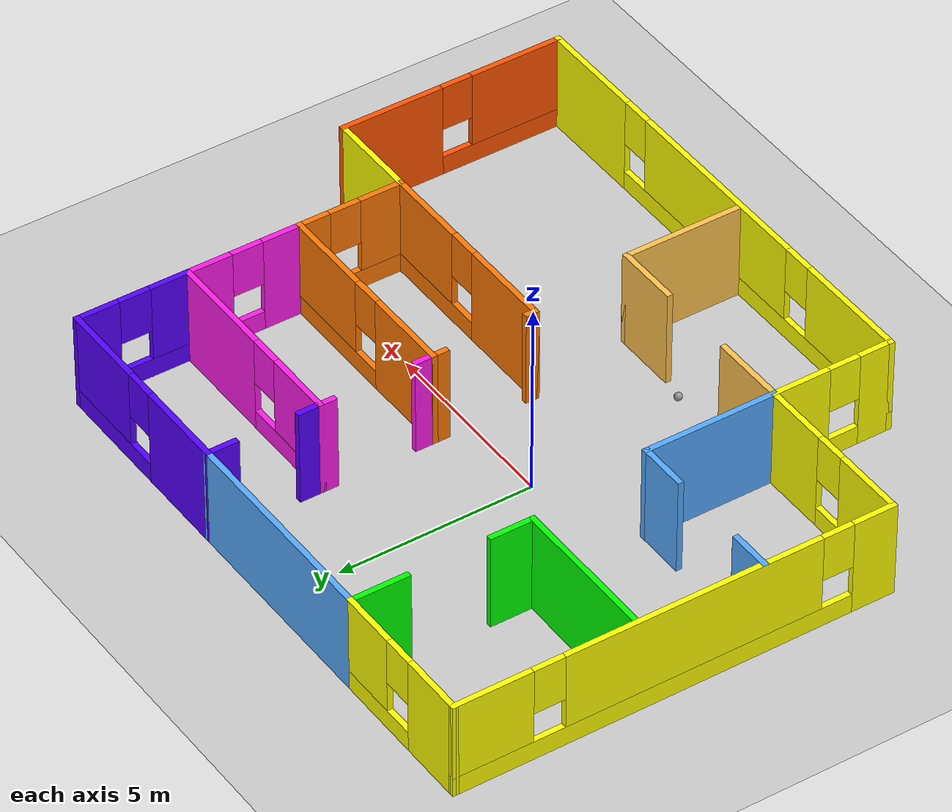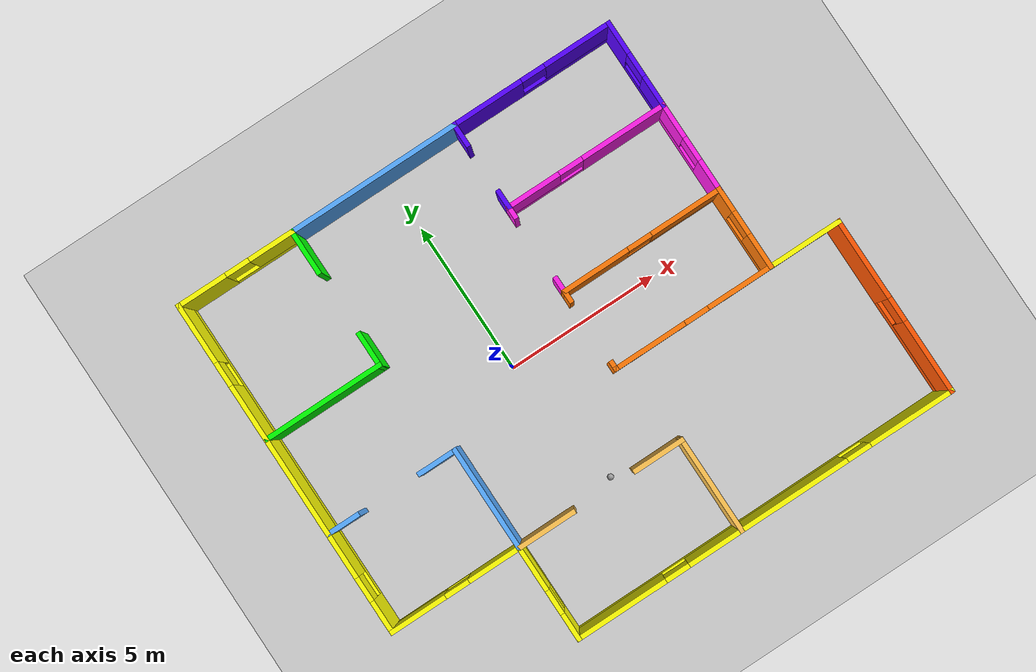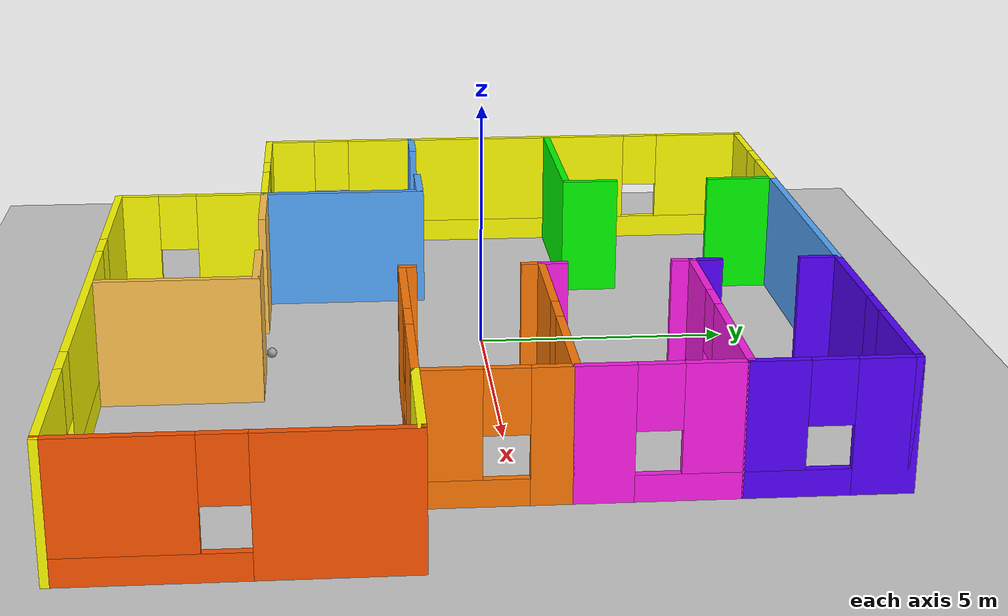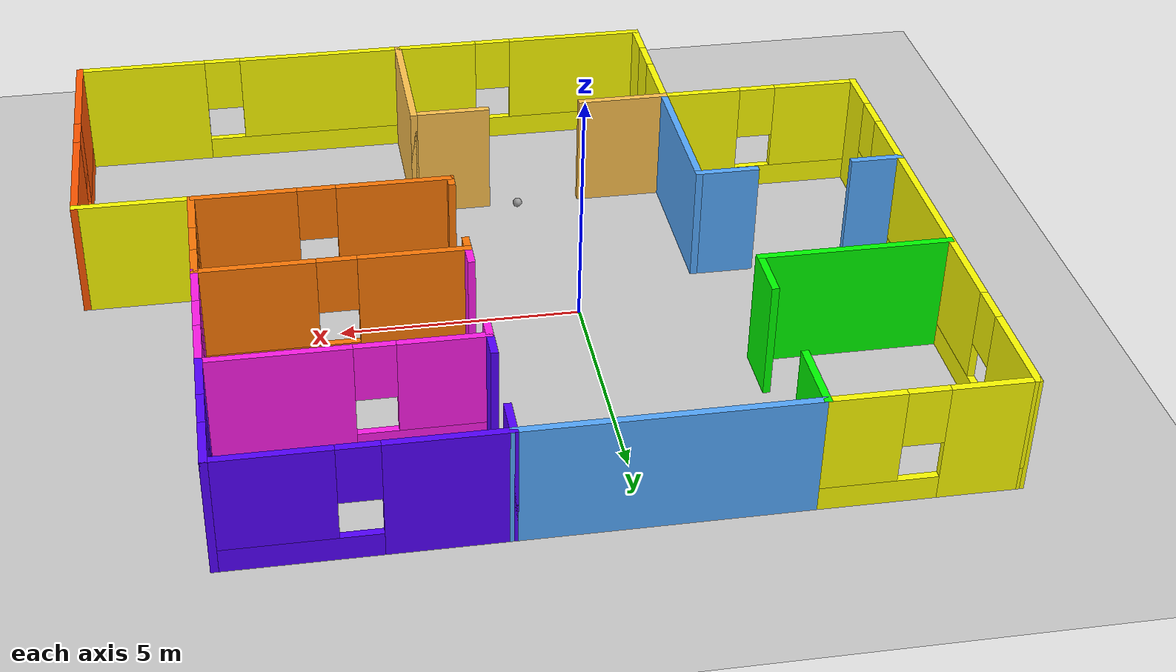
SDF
<sdf version="1.6">
 <world name="default">
  <plugin name="hello" filename="libhello.so"/>
  <light name="sun" type="directional">
   <pose>0 0 10 0 -0 0</pose>
   <diffuse>0.8 0.8 0.8 1</diffuse>
   <specular>0.1 0.1 0.1 1</specular>
   <attenuation>
    <range>1000</range>
    <constant>0.9</constant>
    <linear>0.01</linear>
    <quadratic>0.001</quadratic>
   </attenuation>
   <direction>-0.5 0.5 -1</direction>
  </light>
  <model name="ground_plane">
   <static>1</static>
   <link name="link">
    <collision name="collision">
     <geometry><plane><normal>0 0 1</normal><size>100 100</size></plane></geometry>
     <surface><friction><ode><mu>100</mu><mu2>50</mu2></ode></friction></surface>
    </collision>
    <visual name="visual">
     <cast_shadows>0</cast_shadows>
     <geometry><plane><normal>0 0 1</normal><size>100 100</size></plane></geometry>
     <material>
      <script><uri>file://media/materials/scripts/gazebo.material</uri><name>Gazebo/Grey</name></script>
     </material>
    </visual>
   </link>
  </model>
  <gravity>0 0 -9.8</gravity>
  <magnetic_field>6e-06 2.3e-05 -4.2e-05</magnetic_field>
  <atmosphere type="adiabatic"/>
  <physics name="default_physics" default="0" type="ode">
   <max_step_size>0.001</max_step_size>
   <real_time_factor>1</real_time_factor>
   <real_time_update_rate>1000</real_time_update_rate>
  </physics>
  <scene><ambient>0.4 0.4 0.4 1</ambient><background>0.7 0.7 0.7 1</background><shadows>1</shadows></scene>
  <spherical_coordinates>
   <surface_model>EARTH_WGS84</surface_model>
   <latitude_deg>0</latitude_deg>
   <longitude_deg>0</longitude_deg>
   <elevation>0</elevation>
   <heading_deg>0</heading_deg>
  </spherical_coordinates>
  <model name="mybuilding">
   <pose>1.56301 -0.42583 0 0 -0 0</pose>
   <link name="Wall_10">
    <pose>2.17523 -7.15011 0 0 -0 3.14159</pose>
    <visual name="Wall_10_Visual_0">
     <pose>-5.06038 0 1.25 0 -0 0</pose>
     <geometry><box><size>2.87924 0.15 2.5</size></box></geometry>
     <material>
      <script><uri>file://media/materials/scripts/gazebo.material</uri><name>Gazebo/Grey</name></script>
      <ambient>1 1 0 1</ambient>
     </material>
    </visual>
    <collision name="Wall_10_Collision_0">
     <geometry><box><size>2.87924 0.15 2.5</size></box></geometry>
     <pose>-5.06038 0 1.25 0 -0 0</pose>
    </collision>
    <visual name="Wall_10_Visual_1">
     <pose>1.43962 0 0.25 0 -0 0</pose>
     <geometry><box><size>10.1208 0.15 0.5</size></box></geometry>
     <material>
      <script><uri>file://media/materials/scripts/gazebo.material</uri><name>Gazebo/Grey</name></script>
      <ambient>1 1 0 1</ambient>
     </material>
    </visual>
    <collision name="Wall_10_Collision_1">
     <geometry><box><size>10.1208 0.15 0.5</size></box></geometry>
     <pose>1.43962 0 0.25 0 -0 0</pose>
    </collision>
    <visual name="Wall_10_Visual_2">
     <pose>-0.096927 0 1.5 0 -0 0</pose>
     <geometry><box><size>5.44766 0.15 2</size></box></geometry>
     <material>
      <script><uri>file://media/materials/scripts/gazebo.material</uri><name>Gazebo/Grey</name></script>
      <ambient>1 1 0 1</ambient>
     </material>
    </visual>
    <collision name="Wall_10_Collision_2">
     <geometry><box><size>5.44766 0.15 2</size></box></geometry>
     <pose>-0.096927 0 1.5 0 -0 0</pose>
    </collision>
    <visual name="Wall_10_Visual_3">
     <pose>4.96345 0 1.5 0 -0 0</pose>
     <geometry><box><size>3.07309 0.15 2</size></box></geometry>
     <material>
      <script><uri>file://media/materials/scripts/gazebo.material</uri><name>Gazebo/Grey</name></script>
      <ambient>1 1 0 1</ambient>
     </material>
    </visual>
    <collision name="Wall_10_Collision_3">
     <geometry><box><size>3.07309 0.15 2</size></box></geometry>
     <pose>4.96345 0 1.5 0 -0 0</pose>
    </collision>
    <visual name="Wall_10_Visual_4">
     <pose>-3.22076 0 1.9 0 -0 0</pose>
     <geometry><box><size>0.8 0.15 1.2</size></box></geometry>
     <material>
      <script><uri>file://media/materials/scripts/gazebo.material</uri><name>Gazebo/Grey</name></script>
      <ambient>1 1 0 1</ambient>
     </material>
    </visual>
    <collision name="Wall_10_Collision_4">
     <geometry><box><size>0.8 0.15 1.2</size></box></geometry>
     <pose>-3.22076 0 1.9 0 -0 0</pose>
    </collision>
    <visual name="Wall_10_Visual_5">
     <pose>3.02691 0 1.9 0 -0 0</pose>
     <geometry><box><size>0.8 0.15 1.2</size></box></geometry>
     <material>
      <script><uri>file://media/materials/scripts/gazebo.material</uri><name>Gazebo/Grey</name></script>
      <ambient>1 1 0 1</ambient>
     </material>
    </visual>
    <collision name="Wall_10_Collision_5">
     <geometry><box><size>0.8 0.15 1.2</size></box></geometry>
     <pose>3.02691 0 1.9 0 -0 0</pose>
    </collision>
   </link>
   <link name="Wall_11">
    <pose>-4.24977 -5.60011 0 0 -0 1.5708</pose>
    <visual name="Wall_11_Visual_0">
     <pose>-1.16435 0 1.25 0 -0 0</pose>
     <geometry><box><size>0.921292 0.15 2.5</size></box></geometry>
     <material>
      <script><uri>file://media/materials/scripts/gazebo.material</uri><name>Gazebo/Grey</name></script>
      <ambient>1 1 0 1</ambient>
     </material>
    </visual>
    <collision name="Wall_11_Collision_0">
     <geometry><box><size>0.921292 0.15 2.5</size></box></geometry>
     <pose>-1.16435 0 1.25 0 -0 0</pose>
    </collision>
    <visual name="Wall_11_Visual_1">
     <pose>0.460646 0 0.25 0 -0 0</pose>
     <geometry><box><size>2.32871 0.15 0.5</size></box></geometry>
     <material>
      <script><uri>file://media/materials/scripts/gazebo.material</uri><name>Gazebo/Grey</name></script>
      <ambient>1 1 0 1</ambient>
     </material>
    </visual>
    <collision name="Wall_11_Collision_1">
     <geometry><box><size>2.32871 0.15 0.5</size></box></geometry>
     <pose>0.460646 0 0.25 0 -0 0</pose>
    </collision>
    <visual name="Wall_11_Visual_2">
     <pose>0.860646 0 1.5 0 -0 0</pose>
     <geometry><box><size>1.52871 0.15 2</size></box></geometry>
     <material>
      <script><uri>file://media/materials/scripts/gazebo.material</uri><name>Gazebo/Grey</name></script>
      <ambient>1 1 0 1</ambient>
     </material>
    </visual>
    <collision name="Wall_11_Collision_2">
     <geometry><box><size>1.52871 0.15 2</size></box></geometry>
     <pose>0.860646 0 1.5 0 -0 0</pose>
    </collision>
    <visual name="Wall_11_Visual_3">
     <pose>-0.303708 0 1.9 0 -0 0</pose>
     <geometry><box><size>0.8 0.15 1.2</size></box></geometry>
     <material>
      <script><uri>file://media/materials/scripts/gazebo.material</uri><name>Gazebo/Grey</name></script>
      <ambient>1 1 0 1</ambient>
     </material>
    </visual>
    <collision name="Wall_11_Collision_3">
     <geometry><box><size>0.8 0.15 1.2</size></box></geometry>
     <pose>-0.303708 0 1.9 0 -0 0</pose>
    </collision>
   </link>
   <link name="Wall_12">
    <pose>-6.42494 -4.05006 0 0 -0 3.14157</pose>
    <visual name="Wall_12_Visual_0">
     <pose>-1.3501 0 1.25 0 -0 0</pose>
     <geometry><box><size>1.7998 0.15 2.5</size></box></geometry>
     <material>
      <script><uri>file://media/materials/scripts/gazebo.material</uri><name>Gazebo/Grey</name></script>
      <ambient>1 1 0 1</ambient>
     </material>
    </visual>
    <collision name="Wall_12_Collision_0">
     <geometry><box><size>1.7998 0.15 2.5</size></box></geometry>
     <pose>-1.3501 0 1.25 0 -0 0</pose>
    </collision>
    <visual name="Wall_12_Visual_1">
     <pose>0.8999 0 0.25 0 -0 0</pose>
     <geometry><box><size>2.7002 0.15 0.5</size></box></geometry>
     <material>
      <script><uri>file://media/materials/scripts/gazebo.material</uri><name>Gazebo/Grey</name></script>
      <ambient>1 1 0 1</ambient>
     </material>
    </visual>
    <collision name="Wall_12_Collision_1">
     <geometry><box><size>2.7002 0.15 0.5</size></box></geometry>
     <pose>0.8999 0 0.25 0 -0 0</pose>
    </collision>
    <visual name="Wall_12_Visual_2">
     <pose>1.2999 0 1.5 0 -0 0</pose>
     <geometry><box><size>1.9002 0.15 2</size></box></geometry>
     <material>
      <script><uri>file://media/materials/scripts/gazebo.material</uri><name>Gazebo/Grey</name></script>
      <ambient>1 1 0 1</ambient>
     </material>
    </visual>
    <collision name="Wall_12_Collision_2">
     <geometry><box><size>1.9002 0.15 2</size></box></geometry>
     <pose>1.2999 0 1.5 0 -0 0</pose>
    </collision>
    <visual name="Wall_12_Visual_3">
     <pose>-0.0502 0 1.9 0 -0 0</pose>
     <geometry><box><size>0.8 0.15 1.2</size></box></geometry>
     <material>
      <script><uri>file://media/materials/scripts/gazebo.material</uri><name>Gazebo/Grey</name></script>
      <ambient>1 1 0 1</ambient>
     </material>
    </visual>
    <collision name="Wall_12_Collision_3">
     <geometry><box><size>0.8 0.15 1.2</size></box></geometry>
     <pose>-0.0502 0 1.9 0 -0 0</pose>
    </collision>
   </link>
   <link name="Wall_15">
    <pose>-8.60011 1.55 0 0 -0 1.5708</pose>
    <visual name="Wall_15_Visual_0">
     <pose>-5.11027 0 1.25 0 -0 0</pose>
     <geometry><box><size>1.12946 0.15 2.5</size></box></geometry>
     <material>
      <script><uri>file://media/materials/scripts/gazebo.material</uri><name>Gazebo/Grey</name></script>
      <ambient>1 1 0 1</ambient>
     </material>
    </visual>
    <collision name="Wall_15_Collision_0">
     <geometry><box><size>1.12946 0.15 2.5</size></box></geometry>
     <pose>-5.11027 0 1.25 0 -0 0</pose>
    </collision>
    <visual name="Wall_15_Visual_1">
     <pose>0.564732 0 0.25 0 -0 0</pose>
     <geometry><box><size>10.2205 0.15 0.5</size></box></geometry>
     <material>
      <script><uri>file://media/materials/scripts/gazebo.material</uri><name>Gazebo/Grey</name></script>
      <ambient>1 1 0 1</ambient>
     </material>
    </visual>
    <collision name="Wall_15_Collision_1">
     <geometry><box><size>10.2205 0.15 0.5</size></box></geometry>
     <pose>0.564732 0 0.25 0 -0 0</pose>
    </collision>
    <visual name="Wall_15_Visual_2">
     <pose>-0.451765 0 1.5 0 -0 0</pose>
     <geometry><box><size>6.58754 0.15 2</size></box></geometry>
     <material>
      <script><uri>file://media/materials/scripts/gazebo.material</uri><name>Gazebo/Grey</name></script>
      <ambient>1 1 0 1</ambient>
     </material>
    </visual>
    <collision name="Wall_15_Collision_2">
     <geometry><box><size>6.58754 0.15 2</size></box></geometry>
     <pose>-0.451765 0 1.5 0 -0 0</pose>
    </collision>
    <visual name="Wall_15_Visual_3">
     <pose>4.6585 0 1.5 0 -0 0</pose>
     <geometry><box><size>2.033 0.15 2</size></box></geometry>
     <material>
      <script><uri>file://media/materials/scripts/gazebo.material</uri><name>Gazebo/Grey</name></script>
      <ambient>1 1 0 1</ambient>
     </material>
    </visual>
    <collision name="Wall_15_Collision_3">
     <geometry><box><size>2.033 0.15 2</size></box></geometry>
     <pose>4.6585 0 1.5 0 -0 0</pose>
    </collision>
    <visual name="Wall_15_Visual_4">
     <pose>-4.14553 0 1.9 0 -0 0</pose>
     <geometry><box><size>0.8 0.15 1.2</size></box></geometry>
     <material>
      <script><uri>file://media/materials/scripts/gazebo.material</uri><name>Gazebo/Grey</name></script>
      <ambient>1 1 0 1</ambient>
     </material>
    </visual>
    <collision name="Wall_15_Collision_4">
     <geometry><box><size>0.8 0.15 1.2</size></box></geometry>
     <pose>-4.14553 0 1.9 0 -0 0</pose>
    </collision>
    <visual name="Wall_15_Visual_5">
     <pose>3.242 0 1.9 0 -0 0</pose>
     <geometry><box><size>0.8 0.15 1.2</size></box></geometry>
     <material>
      <script><uri>file://media/materials/scripts/gazebo.material</uri><name>Gazebo/Grey</name></script>
      <ambient>1 1 0 1</ambient>
     </material>
    </visual>
    <collision name="Wall_15_Collision_5">
     <geometry><box><size>0.8 0.15 1.2</size></box></geometry>
     <pose>3.242 0 1.9 0 -0 0</pose>
    </collision>
   </link>
   <link name="Wall_19">
    <pose>3.57489 4.3 0 0 -0 3.14159</pose>
    <visual name="Wall_19_Visual_0">
     <pose>-1.30873 0 1.25 0 -0 0</pose>
     <geometry><box><size>2.88253 0.15 2.5</size></box></geometry>
     <material>
      <script><uri>file://media/materials/scripts/gazebo.material</uri><name>Gazebo/Grey</name></script>
      <ambient>1 0.109804 0.913725 1</ambient>
     </material>
    </visual>
    <collision name="Wall_19_Collision_0">
     <geometry><box><size>2.88253 0.15 2.5</size></box></geometry>
     <pose>-1.30873 0 1.25 0 -0 0</pose>
    </collision>
    <visual name="Wall_19_Visual_1">
     <pose>1.44127 0 0.25 0 -0 0</pose>
     <geometry><box><size>2.61747 0.15 0.5</size></box></geometry>
     <material>
      <script><uri>file://media/materials/scripts/gazebo.material</uri><name>Gazebo/Grey</name></script>
      <ambient>1 0.109804 0.913725 1</ambient>
     </material>
    </visual>
    <collision name="Wall_19_Collision_1">
     <geometry><box><size>2.61747 0.15 0.5</size></box></geometry>
     <pose>1.44127 0 0.25 0 -0 0</pose>
    </collision>
    <visual name="Wall_19_Visual_2">
     <pose>1.84126 0 1.5 0 -0 0</pose>
     <geometry><box><size>1.81747 0.15 2</size></box></geometry>
     <material>
      <script><uri>file://media/materials/scripts/gazebo.material</uri><name>Gazebo/Grey</name></script>
      <ambient>1 0.109804 0.913725 1</ambient>
     </material>
    </visual>
    <collision name="Wall_19_Collision_2">
     <geometry><box><size>1.81747 0.15 2</size></box></geometry>
     <pose>1.84126 0 1.5 0 -0 0</pose>
    </collision>
    <visual name="Wall_19_Visual_3">
     <pose>0.53253 0 1.9 0 -0 0</pose>
     <geometry><box><size>0.8 0.15 1.2</size></box></geometry>
     <material>
      <script><uri>file://media/materials/scripts/gazebo.material</uri><name>Gazebo/Grey</name></script>
      <ambient>1 0.109804 0.913725 1</ambient>
     </material>
    </visual>
    <collision name="Wall_19_Collision_3">
     <geometry><box><size>0.8 0.15 1.2</size></box></geometry>
     <pose>0.53253 0 1.9 0 -0 0</pose>
    </collision>
   </link>
   <link name="Wall_21">
    <pose>3.57523 -1.30011 0 0 -0 0</pose>
    <visual name="Wall_21_Visual_0">
     <pose>-1.51945 0 1.25 0 -0 0</pose>
     <geometry><box><size>2.4611 0.15 2.5</size></box></geometry>
     <material>
      <script><uri>file://media/materials/scripts/gazebo.material</uri><name>Gazebo/Grey</name></script>
      <ambient>0.996078 0.47451 0.0196078 1</ambient>
     </material>
    </visual>
    <collision name="Wall_21_Collision_0">
     <geometry><box><size>2.4611 0.15 2.5</size></box></geometry>
     <pose>-1.51945 0 1.25 0 -0 0</pose>
    </collision>
    <visual name="Wall_21_Visual_1">
     <pose>1.23055 0 0.25 0 -0 0</pose>
     <geometry><box><size>3.0389 0.15 0.5</size></box></geometry>
     <material>
      <script><uri>file://media/materials/scripts/gazebo.material</uri><name>Gazebo/Grey</name></script>
      <ambient>0.996078 0.47451 0.0196078 1</ambient>
     </material>
    </visual>
    <collision name="Wall_21_Collision_1">
     <geometry><box><size>3.0389 0.15 0.5</size></box></geometry>
     <pose>1.23055 0 0.25 0 -0 0</pose>
    </collision>
    <visual name="Wall_21_Visual_2">
     <pose>1.63055 0 1.5 0 -0 0</pose>
     <geometry><box><size>2.23889 0.15 2</size></box></geometry>
     <material>
      <script><uri>file://media/materials/scripts/gazebo.material</uri><name>Gazebo/Grey</name></script>
      <ambient>0.996078 0.47451 0.0196078 1</ambient>
     </material>
    </visual>
    <collision name="Wall_21_Collision_2">
     <geometry><box><size>2.23889 0.15 2</size></box></geometry>
     <pose>1.63055 0 1.5 0 -0 0</pose>
    </collision>
    <visual name="Wall_21_Visual_3">
     <pose>0.111105 0 1.9 0 -0 0</pose>
     <geometry><box><size>0.8 0.15 1.2</size></box></geometry>
     <material>
      <script><uri>file://media/materials/scripts/gazebo.material</uri><name>Gazebo/Grey</name></script>
      <ambient>0.996078 0.47451 0.0196078 1</ambient>
     </material>
    </visual>
    <collision name="Wall_21_Collision_3">
     <geometry><box><size>0.8 0.15 1.2</size></box></geometry>
     <pose>0.111105 0 1.9 0 -0 0</pose>
    </collision>
   </link>
   <link name="Wall_23">
    <pose>3.57489 1.37699 0 0 -0 0</pose>
    <visual name="Wall_23_Visual_0">
     <pose>-1.61518 0 1.25 0 -0 0</pose>
     <geometry><box><size>2.26965 0.15 2.5</size></box></geometry>
     <material>
      <script><uri>file://media/materials/scripts/gazebo.material</uri><name>Gazebo/Grey</name></script>
      <ambient>0.996078 0.47451 0.0196078 1</ambient>
     </material>
    </visual>
    <collision name="Wall_23_Collision_0">
     <geometry><box><size>2.26965 0.15 2.5</size></box></geometry>
     <pose>-1.61518 0 1.25 0 -0 0</pose>
    </collision>
    <visual name="Wall_23_Visual_1">
     <pose>1.13482 0 0.25 0 -0 0</pose>
     <geometry><box><size>3.23035 0.15 0.5</size></box></geometry>
     <material>
      <script><uri>file://media/materials/scripts/gazebo.material</uri><name>Gazebo/Grey</name></script>
      <ambient>0.996078 0.47451 0.0196078 1</ambient>
     </material>
    </visual>
    <collision name="Wall_23_Collision_1">
     <geometry><box><size>3.23035 0.15 0.5</size></box></geometry>
     <pose>1.13482 0 0.25 0 -0 0</pose>
    </collision>
    <visual name="Wall_23_Visual_2">
     <pose>1.53483 0 1.5 0 -0 0</pose>
     <geometry><box><size>2.43035 0.15 2</size></box></geometry>
     <material>
      <script><uri>file://media/materials/scripts/gazebo.material</uri><name>Gazebo/Grey</name></script>
      <ambient>0.996078 0.47451 0.0196078 1</ambient>
     </material>
    </visual>
    <collision name="Wall_23_Collision_2">
     <geometry><box><size>2.43035 0.15 2</size></box></geometry>
     <pose>1.53483 0 1.5 0 -0 0</pose>
    </collision>
    <visual name="Wall_23_Visual_3">
     <pose>-0.080349 0 1.9 0 -0 0</pose>
     <geometry><box><size>0.8 0.15 1.2</size></box></geometry>
     <material>
      <script><uri>file://media/materials/scripts/gazebo.material</uri><name>Gazebo/Grey</name></script>
      <ambient>0.996078 0.47451 0.0196078 1</ambient>
     </material>
    </visual>
    <collision name="Wall_23_Collision_3">
     <geometry><box><size>0.8 0.15 1.2</size></box></geometry>
     <pose>-0.080349 0 1.9 0 -0 0</pose>
    </collision>
   </link>
   <link name="Wall_25">
    <collision name="Wall_25_Collision">
     <geometry><box><size>3.5 0.15 2.5</size></box></geometry>
     <pose>0 0 1.25 0 -0 0</pose>
    </collision>
    <visual name="Wall_25_Visual">
     <pose>0 0 1.25 0 -0 0</pose>
     <geometry><box><size>3.5 0.15 2.5</size></box></geometry>
     <material>
      <script><uri>file://media/materials/scripts/gazebo.material</uri><name>Gazebo/Grey</name></script>
      <ambient>0.333333 0.666667 1 1</ambient>
     </material>
    </visual>
    <pose>-4.24977 -2.37511 0 0 -0 1.5708</pose>
   </link>
   <link name="Wall_26">
    <pose>-6.42478 -0.700112 0 0 -0 3.14159</pose>
    <visual name="Wall_26_Visual_0">
     <pose>-1.5717 0 1.25 0 -0 0</pose>
     <geometry><box><size>1.35659 0.15 2.5</size></box></geometry>
     <material>
      <script><uri>file://media/materials/scripts/gazebo.material</uri><name>Gazebo/Grey</name></script>
      <ambient>0.333333 0.666667 1 1</ambient>
     </material>
    </visual>
    <collision name="Wall_26_Collision_0">
     <geometry><box><size>1.35659 0.15 2.5</size></box></geometry>
     <pose>-1.5717 0 1.25 0 -0 0</pose>
    </collision>
    <visual name="Wall_26_Visual_1">
     <pose>1.6783 0 1.25 0 -0 0</pose>
     <geometry><box><size>1.14341 0.15 2.5</size></box></geometry>
     <material>
      <script><uri>file://media/materials/scripts/gazebo.material</uri><name>Gazebo/Grey</name></script>
      <ambient>0.333333 0.666667 1 1</ambient>
     </material>
    </visual>
    <collision name="Wall_26_Collision_1">
     <geometry><box><size>1.14341 0.15 2.5</size></box></geometry>
     <pose>1.6783 0 1.25 0 -0 0</pose>
    </collision>
   </link>
   <link name="Wall_32">
    <collision name="Wall_32_Collision">
     <geometry><box><size>4 0.15 2.5</size></box></geometry>
     <pose>0 0 1.25 0 -0 0</pose>
    </collision>
    <visual name="Wall_32_Visual">
     <pose>0 0 1.25 0 -0 0</pose>
     <geometry><box><size>4 0.15 2.5</size></box></geometry>
     <material>
      <script><uri>file://media/materials/scripts/gazebo.material</uri><name>Gazebo/Grey</name></script>
      <ambient>0 1 0 1</ambient>
     </material>
    </visual>
    <pose>-6.63784 2.54388 0 0 -0 0</pose>
   </link>
   <link name="Wall_39">
    <pose>-4.71284 4.84388 0 0 -0 1.5708</pose>
    <visual name="Wall_39_Visual_0">
     <pose>-1.77148 0 1.25 0 -0 0</pose>
     <geometry><box><size>1.20704 0.15 2.5</size></box></geometry>
     <material>
      <script><uri>file://media/materials/scripts/gazebo.material</uri><name>Gazebo/Grey</name></script>
      <ambient>0 1 0 1</ambient>
     </material>
    </visual>
    <collision name="Wall_39_Collision_0">
     <geometry><box><size>1.20704 0.15 2.5</size></box></geometry>
     <pose>-1.77148 0 1.25 0 -0 0</pose>
    </collision>
    <visual name="Wall_39_Visual_1">
     <pose>1.60352 0 1.25 0 -0 0</pose>
     <geometry><box><size>1.54296 0.15 2.5</size></box></geometry>
     <material>
      <script><uri>file://media/materials/scripts/gazebo.material</uri><name>Gazebo/Grey</name></script>
      <ambient>0 1 0 1</ambient>
     </material>
    </visual>
    <collision name="Wall_39_Collision_1">
     <geometry><box><size>1.54296 0.15 2.5</size></box></geometry>
     <pose>1.60352 0 1.25 0 -0 0</pose>
    </collision>
   </link>
   <link name="Wall_41">
    <pose>0.899892 5.72499 0 0 -0 1.5708</pose>
    <visual name="Wall_41_Visual_0">
     <pose>-1.16676 0 1.25 0 -0 0</pose>
     <geometry><box><size>0.666482 0.15 2.5</size></box></geometry>
     <material>
      <script><uri>file://media/materials/scripts/gazebo.material</uri><name>Gazebo/Grey</name></script>
      <ambient>0.333333 0 1 1</ambient>
     </material>
    </visual>
    <collision name="Wall_41_Collision_0">
     <geometry><box><size>0.666482 0.15 2.5</size></box></geometry>
     <pose>-1.16676 0 1.25 0 -0 0</pose>
    </collision>
    <visual name="Wall_41_Visual_1">
     <pose>1.08324 0 1.25 0 -0 0</pose>
     <geometry><box><size>0.833518 0.15 2.5</size></box></geometry>
     <material>
      <script><uri>file://media/materials/scripts/gazebo.material</uri><name>Gazebo/Grey</name></script>
      <ambient>0.333333 0 1 1</ambient>
     </material>
    </visual>
    <collision name="Wall_41_Collision_1">
     <geometry><box><size>0.833518 0.15 2.5</size></box></geometry>
     <pose>1.08324 0 1.25 0 -0 0</pose>
    </collision>
   </link>
   <link name="Wall_47">
    <pose>-6.65647 7.14694 0 0 0 -0.001573</pose>
    <visual name="Wall_47_Visual_0">
     <pose>-1.17383 0 1.25 0 -0 0</pose>
     <geometry><box><size>1.68962 0.15 2.5</size></box></geometry>
     <material>
      <script><uri>file://media/materials/scripts/gazebo.material</uri><name>Gazebo/Grey</name></script>
      <ambient>1 1 0 1</ambient>
     </material>
    </visual>
    <collision name="Wall_47_Collision_0">
     <geometry><box><size>1.68962 0.15 2.5</size></box></geometry>
     <pose>-1.17383 0 1.25 0 -0 0</pose>
    </collision>
    <visual name="Wall_47_Visual_1">
     <pose>0.844811 0 0.25 0 -0 0</pose>
     <geometry><box><size>2.34766 0.15 0.5</size></box></geometry>
     <material>
      <script><uri>file://media/materials/scripts/gazebo.material</uri><name>Gazebo/Grey</name></script>
      <ambient>1 1 0 1</ambient>
     </material>
    </visual>
    <collision name="Wall_47_Collision_1">
     <geometry><box><size>2.34766 0.15 0.5</size></box></geometry>
     <pose>0.844811 0 0.25 0 -0 0</pose>
    </collision>
    <visual name="Wall_47_Visual_2">
     <pose>1.24481 0 1.5 0 -0 0</pose>
     <geometry><box><size>1.54766 0.15 2</size></box></geometry>
     <material>
      <script><uri>file://media/materials/scripts/gazebo.material</uri><name>Gazebo/Grey</name></script>
      <ambient>1 1 0 1</ambient>
     </material>
    </visual>
    <collision name="Wall_47_Collision_2">
     <geometry><box><size>1.54766 0.15 2</size></box></geometry>
     <pose>1.24481 0 1.5 0 -0 0</pose>
    </collision>
    <visual name="Wall_47_Visual_3">
     <pose>0.070983 0 1.9 0 -0 0</pose>
     <geometry><box><size>0.8 0.15 1.2</size></box></geometry>
     <material>
      <script><uri>file://media/materials/scripts/gazebo.material</uri><name>Gazebo/Grey</name></script>
      <ambient>1 1 0 1</ambient>
     </material>
    </visual>
    <collision name="Wall_47_Collision_3">
     <geometry><box><size>0.8 0.15 1.2</size></box></geometry>
     <pose>0.070983 0 1.9 0 -0 0</pose>
    </collision>
   </link>
   <link name="Wall_48">
    <collision name="Wall_48_Collision">
     <geometry><box><size>5.76306 0.15 2.5</size></box></geometry>
     <pose>0 0 1.25 0 -0 0</pose>
    </collision>
    <visual name="Wall_48_Visual">
     <pose>0 0 1.25 0 -0 0</pose>
     <geometry><box><size>5.76306 0.15 2.5</size></box></geometry>
     <material>
      <script><uri>file://media/materials/scripts/gazebo.material</uri><name>Gazebo/Grey</name></script>
      <ambient>0.333333 0.666667 1 1</ambient>
     </material>
    </visual>
    <pose>-1.90647 7.14694 0 0 -0 0.001089</pose>
   </link>
   <link name="Wall_52">
    <pose>3.57489 7.14999 0 0 -0 0</pose>
    <visual name="Wall_52_Visual_0">
     <pose>-1.55443 0 1.25 0 -0 0</pose>
     <geometry><box><size>2.39113 0.15 2.5</size></box></geometry>
     <material>
      <script><uri>file://media/materials/scripts/gazebo.material</uri><name>Gazebo/Grey</name></script>
      <ambient>0.333333 0 1 1</ambient>
     </material>
    </visual>
    <collision name="Wall_52_Collision_0">
     <geometry><box><size>2.39113 0.15 2.5</size></box></geometry>
     <pose>-1.55443 0 1.25 0 -0 0</pose>
    </collision>
    <visual name="Wall_52_Visual_1">
     <pose>1.19557 0 0.25 0 -0 0</pose>
     <geometry><box><size>3.10887 0.15 0.5</size></box></geometry>
     <material>
      <script><uri>file://media/materials/scripts/gazebo.material</uri><name>Gazebo/Grey</name></script>
      <ambient>0.333333 0 1 1</ambient>
     </material>
    </visual>
    <collision name="Wall_52_Collision_1">
     <geometry><box><size>3.10887 0.15 0.5</size></box></geometry>
     <pose>1.19557 0 0.25 0 -0 0</pose>
    </collision>
    <visual name="Wall_52_Visual_2">
     <pose>1.59557 0 1.5 0 -0 0</pose>
     <geometry><box><size>2.30887 0.15 2</size></box></geometry>
     <material>
      <script><uri>file://media/materials/scripts/gazebo.material</uri><name>Gazebo/Grey</name></script>
      <ambient>0.333333 0 1 1</ambient>
     </material>
    </visual>
    <collision name="Wall_52_Collision_2">
     <geometry><box><size>2.30887 0.15 2</size></box></geometry>
     <pose>1.59557 0 1.5 0 -0 0</pose>
    </collision>
    <visual name="Wall_52_Visual_3">
     <pose>0.041132 0 1.9 0 -0 0</pose>
     <geometry><box><size>0.8 0.15 1.2</size></box></geometry>
     <material>
      <script><uri>file://media/materials/scripts/gazebo.material</uri><name>Gazebo/Grey</name></script>
      <ambient>0.333333 0 1 1</ambient>
     </material>
    </visual>
    <collision name="Wall_52_Collision_3">
     <geometry><box><size>0.8 0.15 1.2</size></box></geometry>
     <pose>0.041132 0 1.9 0 -0 0</pose>
    </collision>
   </link>
   <link name="Wall_54">
    <pose>6.24989 5.72499 0 0 0 -1.5708</pose>
    <visual name="Wall_54_Visual_0">
     <pose>-0.940826 0 1.25 0 -0 0</pose>
     <geometry><box><size>1.11835 0.15 2.5</size></box></geometry>
     <material>
      <script><uri>file://media/materials/scripts/gazebo.material</uri><name>Gazebo/Grey</name></script>
      <ambient>0.333333 0 1 1</ambient>
     </material>
    </visual>
    <collision name="Wall_54_Collision_0">
     <geometry><box><size>1.11835 0.15 2.5</size></box></geometry>
     <pose>-0.940826 0 1.25 0 -0 0</pose>
    </collision>
    <visual name="Wall_54_Visual_1">
     <pose>0.559174 0 0.25 0 -0 0</pose>
     <geometry><box><size>1.88165 0.15 0.5</size></box></geometry>
     <material>
      <script><uri>file://media/materials/scripts/gazebo.material</uri><name>Gazebo/Grey</name></script>
      <ambient>0.333333 0 1 1</ambient>
     </material>
    </visual>
    <collision name="Wall_54_Collision_1">
     <geometry><box><size>1.88165 0.15 0.5</size></box></geometry>
     <pose>0.559174 0 0.25 0 -0 0</pose>
    </collision>
    <visual name="Wall_54_Visual_2">
     <pose>0.959174 0 1.5 0 -0 0</pose>
     <geometry><box><size>1.08165 0.15 2</size></box></geometry>
     <material>
      <script><uri>file://media/materials/scripts/gazebo.material</uri><name>Gazebo/Grey</name></script>
      <ambient>0.333333 0 1 1</ambient>
     </material>
    </visual>
    <collision name="Wall_54_Collision_2">
     <geometry><box><size>1.08165 0.15 2</size></box></geometry>
     <pose>0.959174 0 1.5 0 -0 0</pose>
    </collision>
    <visual name="Wall_54_Visual_3">
     <pose>0.018348 0 1.9 0 -0 0</pose>
     <geometry><box><size>0.8 0.15 1.2</size></box></geometry>
     <material>
      <script><uri>file://media/materials/scripts/gazebo.material</uri><name>Gazebo/Grey</name></script>
      <ambient>0.333333 0 1 1</ambient>
     </material>
    </visual>
    <collision name="Wall_54_Collision_3">
     <geometry><box><size>0.8 0.15 1.2</size></box></geometry>
     <pose>0.018348 0 1.9 0 -0 0</pose>
    </collision>
   </link>
   <link name="Wall_59">
    <pose>6.24989 2.83849 0 0 -0 1.5708</pose>
    <visual name="Wall_59_Visual_0">
     <pose>-0.994092 0 1.25 0 -0 0</pose>
     <geometry><box><size>1.08482 0.15 2.5</size></box></geometry>
     <material>
      <script><uri>file://media/materials/scripts/gazebo.material</uri><name>Gazebo/Grey</name></script>
      <ambient>1 0.109804 0.913725 1</ambient>
     </material>
    </visual>
    <collision name="Wall_59_Collision_0">
     <geometry><box><size>1.08482 0.15 2.5</size></box></geometry>
     <pose>-0.994092 0 1.25 0 -0 0</pose>
    </collision>
    <visual name="Wall_59_Visual_1">
     <pose>0.542408 0 0.25 0 -0 0</pose>
     <geometry><box><size>1.98819 0.15 0.5</size></box></geometry>
     <material>
      <script><uri>file://media/materials/scripts/gazebo.material</uri><name>Gazebo/Grey</name></script>
      <ambient>1 0.109804 0.913725 1</ambient>
     </material>
    </visual>
    <collision name="Wall_59_Collision_1">
     <geometry><box><size>1.98819 0.15 0.5</size></box></geometry>
     <pose>0.542408 0 0.25 0 -0 0</pose>
    </collision>
    <visual name="Wall_59_Visual_2">
     <pose>0.942408 0 1.5 0 -0 0</pose>
     <geometry><box><size>1.18819 0.15 2</size></box></geometry>
     <material>
      <script><uri>file://media/materials/scripts/gazebo.material</uri><name>Gazebo/Grey</name></script>
      <ambient>1 0.109804 0.913725 1</ambient>
     </material>
    </visual>
    <collision name="Wall_59_Collision_2">
     <geometry><box><size>1.18819 0.15 2</size></box></geometry>
     <pose>0.942408 0 1.5 0 -0 0</pose>
    </collision>
    <visual name="Wall_59_Visual_3">
     <pose>-0.051685 0 1.9 0 -0 0</pose>
     <geometry><box><size>0.8 0.15 1.2</size></box></geometry>
     <material>
      <script><uri>file://media/materials/scripts/gazebo.material</uri><name>Gazebo/Grey</name></script>
      <ambient>1 0.109804 0.913725 1</ambient>
     </material>
    </visual>
    <collision name="Wall_59_Collision_3">
     <geometry><box><size>0.8 0.15 1.2</size></box></geometry>
     <pose>-0.051685 0 1.9 0 -0 0</pose>
    </collision>
   </link>
   <link name="Wall_61">
    <pose>6.25006 0.038441 0 0 0 -1.57067</pose>
    <visual name="Wall_61_Visual_0">
     <pose>-0.996947 0 1.25 0 -0 0</pose>
     <geometry><box><size>0.833213 0.15 2.5</size></box></geometry>
     <material>
      <script><uri>file://media/materials/scripts/gazebo.material</uri><name>Gazebo/Grey</name></script>
      <ambient>0.996078 0.47451 0.0196078 1</ambient>
     </material>
    </visual>
    <collision name="Wall_61_Collision_0">
     <geometry><box><size>0.833213 0.15 2.5</size></box></geometry>
     <pose>-0.996947 0 1.25 0 -0 0</pose>
    </collision>
    <visual name="Wall_61_Visual_1">
     <pose>0.416607 0 0.25 0 -0 0</pose>
     <geometry><box><size>1.99389 0.15 0.5</size></box></geometry>
     <material>
      <script><uri>file://media/materials/scripts/gazebo.material</uri><name>Gazebo/Grey</name></script>
      <ambient>0.996078 0.47451 0.0196078 1</ambient>
     </material>
    </visual>
    <collision name="Wall_61_Collision_1">
     <geometry><box><size>1.99389 0.15 0.5</size></box></geometry>
     <pose>0.416607 0 0.25 0 -0 0</pose>
    </collision>
    <visual name="Wall_61_Visual_2">
     <pose>0.816607 0 1.5 0 -0 0</pose>
     <geometry><box><size>1.19389 0.15 2</size></box></geometry>
     <material>
      <script><uri>file://media/materials/scripts/gazebo.material</uri><name>Gazebo/Grey</name></script>
      <ambient>0.996078 0.47451 0.0196078 1</ambient>
     </material>
    </visual>
    <collision name="Wall_61_Collision_2">
     <geometry><box><size>1.19389 0.15 2</size></box></geometry>
     <pose>0.816607 0 1.5 0 -0 0</pose>
    </collision>
    <visual name="Wall_61_Visual_3">
     <pose>-0.18034 0 1.9 0 -0 0</pose>
     <geometry><box><size>0.8 0.15 1.2</size></box></geometry>
     <material>
      <script><uri>file://media/materials/scripts/gazebo.material</uri><name>Gazebo/Grey</name></script>
      <ambient>0.996078 0.47451 0.0196078 1</ambient>
     </material>
    </visual>
    <collision name="Wall_61_Collision_3">
     <geometry><box><size>0.8 0.15 1.2</size></box></geometry>
     <pose>-0.18034 0 1.9 0 -0 0</pose>
    </collision>
   </link>
   <link name="Wall_63">
    <pose>0.899892 2.83849 0 0 -0 1.5708</pose>
    <visual name="Wall_63_Visual_0">
     <pose>-1.24202 0 1.25 0 -0 0</pose>
     <geometry><box><size>0.588959 0.15 2.5</size></box></geometry>
     <material>
      <script><uri>file://media/materials/scripts/gazebo.material</uri><name>Gazebo/Grey</name></script>
      <ambient>1 0.109804 0.913725 1</ambient>
     </material>
    </visual>
    <collision name="Wall_63_Collision_0">
     <geometry><box><size>0.588959 0.15 2.5</size></box></geometry>
     <pose>-1.24202 0 1.25 0 -0 0</pose>
    </collision>
    <visual name="Wall_63_Visual_1">
     <pose>1.29448 0 1.25 0 -0 0</pose>
     <geometry><box><size>0.484041 0.15 2.5</size></box></geometry>
     <material>
      <script><uri>file://media/materials/scripts/gazebo.material</uri><name>Gazebo/Grey</name></script>
      <ambient>1 0.109804 0.913725 1</ambient>
     </material>
    </visual>
    <collision name="Wall_63_Collision_1">
     <geometry><box><size>0.484041 0.15 2.5</size></box></geometry>
     <pose>1.29448 0 1.25 0 -0 0</pose>
    </collision>
   </link>
   <link name="Wall_65">
    <pose>0.900058 0.038441 0 0 -0 1.57092</pose>
    <visual name="Wall_65_Visual_0">
     <pose>-1.23357 0 1.25 0 -0 0</pose>
     <geometry><box><size>0.359973 0.15 2.5</size></box></geometry>
     <material>
      <script><uri>file://media/materials/scripts/gazebo.material</uri><name>Gazebo/Grey</name></script>
      <ambient>0.996078 0.47451 0.0196078 1</ambient>
     </material>
    </visual>
    <collision name="Wall_65_Collision_0">
     <geometry><box><size>0.359973 0.15 2.5</size></box></geometry>
     <pose>-1.23357 0 1.25 0 -0 0</pose>
    </collision>
    <visual name="Wall_65_Visual_1">
     <pose>1.17999 0 1.25 0 -0 0</pose>
     <geometry><box><size>0.467135 0.15 2.5</size></box></geometry>
     <material>
      <script><uri>file://media/materials/scripts/gazebo.material</uri><name>Gazebo/Grey</name></script>
      <ambient>0.996078 0.47451 0.0196078 1</ambient>
     </material>
    </visual>
    <collision name="Wall_65_Collision_1">
     <geometry><box><size>0.467135 0.15 2.5</size></box></geometry>
     <pose>1.17999 0 1.25 0 -0 0</pose>
    </collision>
   </link>
   <link name="Wall_67">
    <pose>-1.44978 -4.05011 0 0 -0 0</pose>
    <visual name="Wall_67_Visual_0">
     <pose>-1.87267 0 1.25 0 -0 0</pose>
     <geometry><box><size>2.00467 0.15 2.5</size></box></geometry>
     <material>
      <script><uri>file://media/materials/scripts/gazebo.material</uri><name>Gazebo/Grey</name></script>
      <ambient>1 0.764706 0.305882 1</ambient>
     </material>
    </visual>
    <collision name="Wall_67_Collision_0">
     <geometry><box><size>2.00467 0.15 2.5</size></box></geometry>
     <pose>-1.87267 0 1.25 0 -0 0</pose>
    </collision>
    <visual name="Wall_67_Visual_1">
     <pose>2.00233 0 1.25 0 -0 0</pose>
     <geometry><box><size>1.74533 0.15 2.5</size></box></geometry>
     <material>
      <script><uri>file://media/materials/scripts/gazebo.material</uri><name>Gazebo/Grey</name></script>
      <ambient>1 0.764706 0.305882 1</ambient>
     </material>
    </visual>
    <collision name="Wall_67_Collision_1">
     <geometry><box><size>1.74533 0.15 2.5</size></box></geometry>
     <pose>2.00233 0 1.25 0 -0 0</pose>
    </collision>
   </link>
   <link name="Wall_68">
    <collision name="Wall_68_Collision">
     <geometry><box><size>3.25 0.15 2.5</size></box></geometry>
     <pose>0 0 1.25 0 -0 0</pose>
    </collision>
    <visual name="Wall_68_Visual">
     <pose>0 0 1.25 0 -0 0</pose>
     <geometry><box><size>3.25 0.15 2.5</size></box></geometry>
     <material>
      <script><uri>file://media/materials/scripts/gazebo.material</uri><name>Gazebo/Grey</name></script>
      <ambient>1 0.764706 0.305882 1</ambient>
     </material>
    </visual>
    <pose>1.35023 -5.60011 0 0 0 -1.5708</pose>
   </link>
   <link name="Wall_8">
    <collision name="Wall_8_Collision">
     <geometry><box><size>2.5 0.15 2.5</size></box></geometry>
     <pose>0 0 1.25 0 -0 0</pose>
    </collision>
    <visual name="Wall_8_Visual">
     <pose>0 0 1.25 0 -0 0</pose>
     <geometry><box><size>2.5 0.15 2.5</size></box></geometry>
     <material>
      <script><uri>file://media/materials/scripts/gazebo.material</uri><name>Gazebo/Grey</name></script>
      <ambient>1 1 0 1</ambient>
     </material>
    </visual>
    <pose>7.42523 -1.30011 0 0 -0 0</pose>
   </link>
   <link name="Wall_9">
    <pose>8.60023 -4.22511 0 0 0 -1.5708</pose>
    <visual name="Wall_9_Visual_0">
     <pose>-1.64508 0 1.25 0 -0 0</pose>
     <geometry><box><size>2.70985 0.15 2.5</size></box></geometry>
     <material>
      <script><uri>file://media/materials/scripts/gazebo.material</uri><name>Gazebo/Grey</name></script>
      <ambient>1 0.333333 0 1</ambient>
     </material>
    </visual>
    <collision name="Wall_9_Collision_0">
     <geometry><box><size>2.70985 0.15 2.5</size></box></geometry>
     <pose>-1.64508 0 1.25 0 -0 0</pose>
    </collision>
    <visual name="Wall_9_Visual_1">
     <pose>1.35492 0 0.25 0 -0 0</pose>
     <geometry><box><size>3.29015 0.15 0.5</size></box></geometry>
     <material>
      <script><uri>file://media/materials/scripts/gazebo.material</uri><name>Gazebo/Grey</name></script>
      <ambient>1 0.333333 0 1</ambient>
     </material>
    </visual>
    <collision name="Wall_9_Collision_1">
     <geometry><box><size>3.29015 0.15 0.5</size></box></geometry>
     <pose>1.35492 0 0.25 0 -0 0</pose>
    </collision>
    <visual name="Wall_9_Visual_2">
     <pose>1.75493 0 1.5 0 -0 0</pose>
     <geometry><box><size>2.49015 0.15 2</size></box></geometry>
     <material>
      <script><uri>file://media/materials/scripts/gazebo.material</uri><name>Gazebo/Grey</name></script>
      <ambient>1 0.333333 0 1</ambient>
     </material>
    </visual>
    <collision name="Wall_9_Collision_2">
     <geometry><box><size>2.49015 0.15 2</size></box></geometry>
     <pose>1.75493 0 1.5 0 -0 0</pose>
    </collision>
    <visual name="Wall_9_Visual_3">
     <pose>0.109849 0 1.9 0 -0 0</pose>
     <geometry><box><size>0.8 0.15 1.2</size></box></geometry>
     <material>
      <script><uri>file://media/materials/scripts/gazebo.material</uri><name>Gazebo/Grey</name></script>
      <ambient>1 0.333333 0 1</ambient>
     </material>
    </visual>
    <collision name="Wall_9_Collision_3">
     <geometry><box><size>0.8 0.15 1.2</size></box></geometry>
     <pose>0.109849 0 1.9 0 -0 0</pose>
    </collision>
   </link>
   <static>1</static>
  </model>
  <model name="white_ball">
   <link name="link_0">
    <inertial>
     <mass>1</mass>
     <inertia><ixx>0.1</ixx><ixy>0</ixy><ixz>0</ixz><iyy>0.1</iyy><iyz>0</iyz><izz>0.1</izz></inertia>
    </inertial>
    <visual name="visual">
     <geometry><sphere><radius>0.1</radius></sphere></geometry>
     <material>
      <lighting>1</lighting>
      <script><uri>file://media/materials/scripts/gazebo.material</uri><name>Gazebo/Grey</name></script>
      <ambient>1 1 1 1</ambient>
      <diffuse>1 1 1 1</diffuse>
      <specular>1 1 1 1</specular>
      <emissive>1 1 1 1</emissive>
      <shader type="vertex"><normal_map>__default__</normal_map></shader>
     </material>
    </visual>
    <collision name="collision">
     <geometry><sphere><radius>0.1</radius></sphere></geometry>
     <surface>
      <friction>
       <ode><mu>1</mu><mu2>1</mu2><fdir1>0 0 0</fdir1><slip1>0</slip1><slip2>0</slip2></ode>
       <torsional>
        <coefficient>1</coefficient>
        <patch_radius>0</patch_radius>
        <surface_radius>0</surface_radius>
        <use_patch_radius>1</use_patch_radius>
        <ode><slip>0</slip></ode>
       </torsional>
      </friction>
      <bounce><restitution_coefficient>0</restitution_coefficient><threshold>1e+06</threshold></bounce>
      <contact>
       <collide_without_contact>0</collide_without_contact>
       <collide_without_contact_bitmask>1</collide_without_contact_bitmask>
       <collide_bitmask>1</collide_bitmask>
       <ode>
        <soft_cfm>0</soft_cfm>
        <soft_erp>0.2</soft_erp>
        <kp>1e+13</kp>
        <kd>1</kd>
        <max_vel>0.01</max_vel>
        <min_depth>0</min_depth>
       </ode>
       <bullet>
        <split_impulse>1</split_impulse>
        <split_impulse_penetration_threshold>-0.01</split_impulse_penetration_threshold>
        <soft_cfm>0</soft_cfm>
        <soft_erp>0.2</soft_erp>
        <kp>1e+13</kp>
        <kd>1</kd>
       </bullet>
      </contact>
     </surface>
    </collision>
   </link>
   <static>0</static>
   <pose>0.624506 -4.31082 0.1 0 -0 0</pose>
  </model>
 </world>
</sdf>
